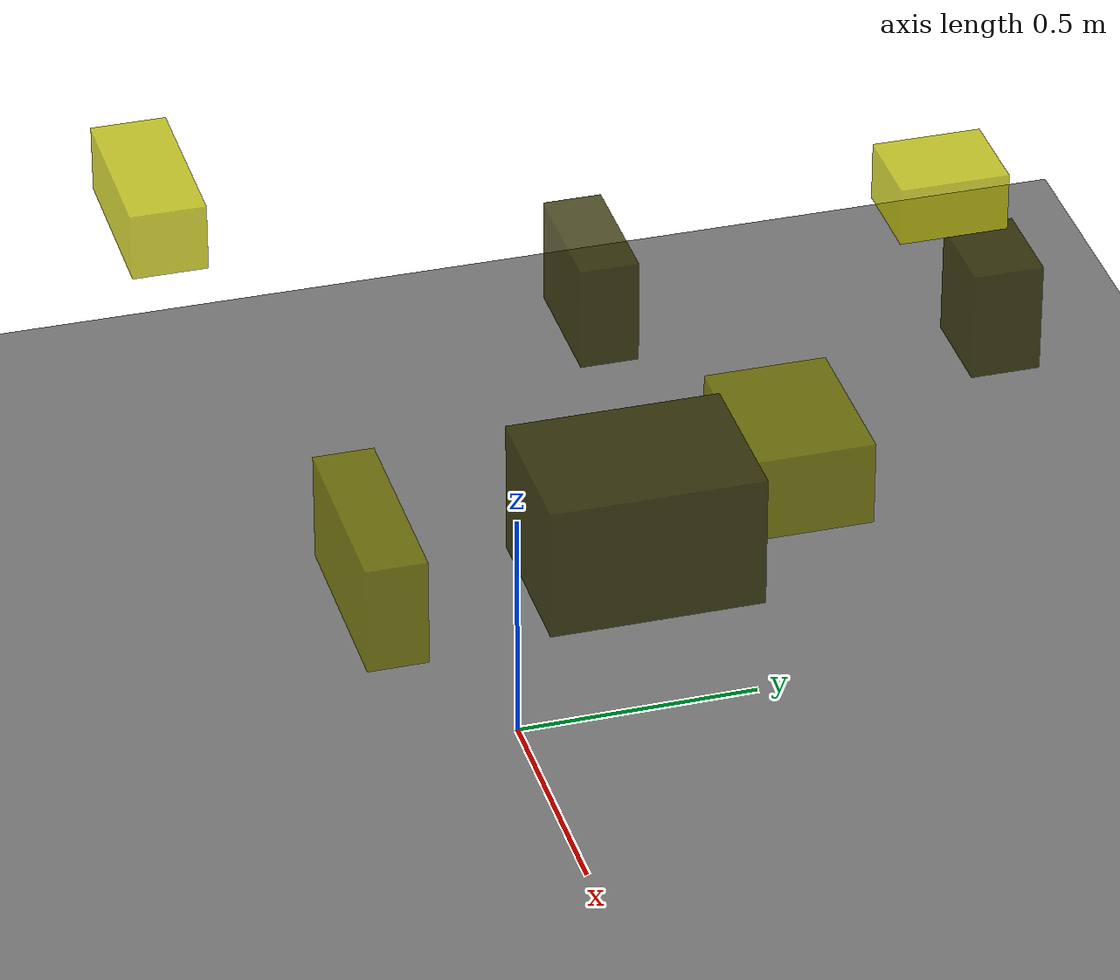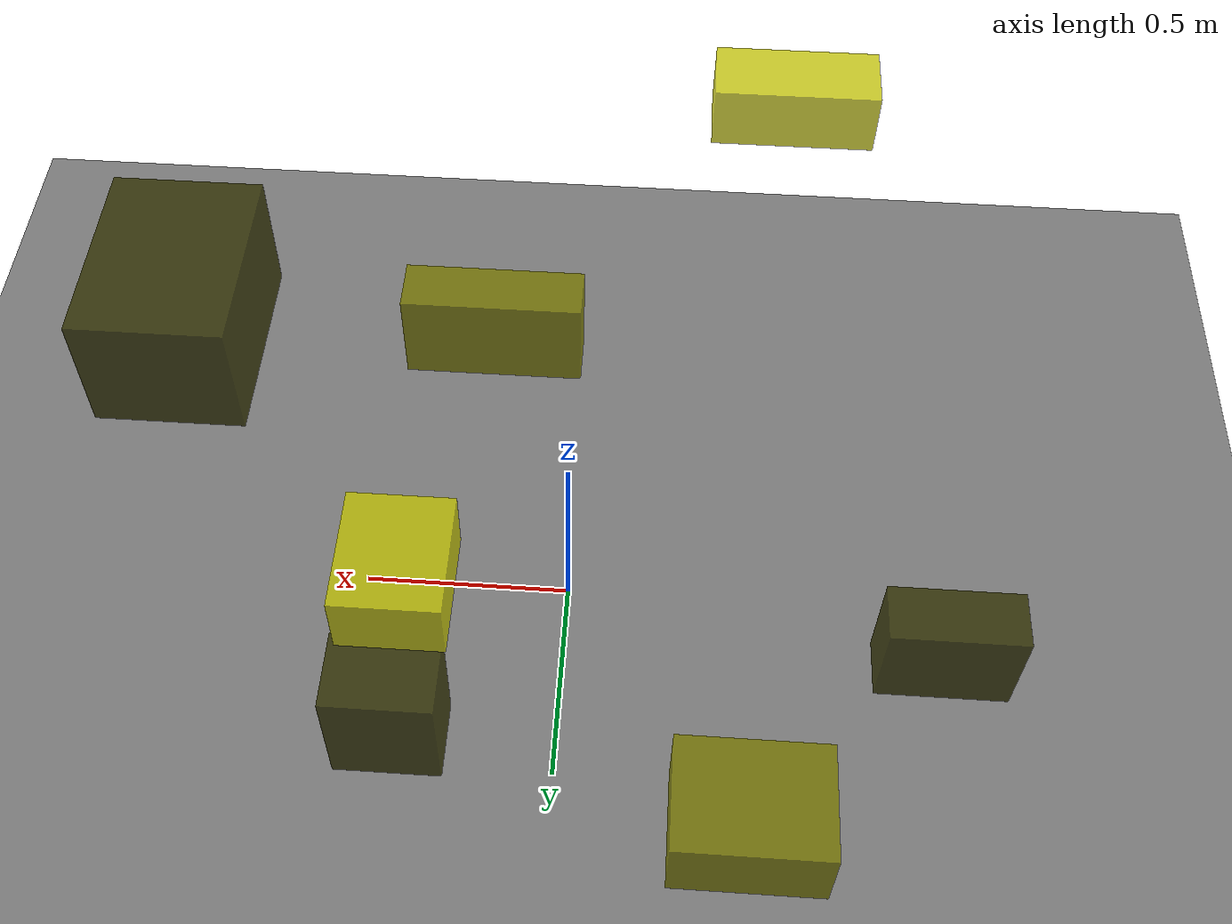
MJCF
<?xml version="1.0"?>
<mujoco model="obstacle_scene">
  <compiler angle="radian" coordinate="local"/>
  <option timestep="0.001" gravity="0 0 -9.81"/>

  <asset>
    <material name="obstacle_mat" rgba="0.8 0.8 0.0 0.8"/>
    <material name="ground_mat" rgba="0.5 0.5 0.5 1"/>
  </asset>

  <worldbody>
    <!-- Ground plane -->
    <geom name="ground" type="plane" size="3 3 0.1" material="ground_mat"/>

    <!-- Obstacles -->
    <body name="obstacle_0" pos="-0.822083 0.384669 0.497075">
      <geom name="obs_0" type="box" size="0.142166 0.061749 0.114674" rgba="0.2 0.2 0.0 0.8"/>
    </body>
    <body name="obstacle_1" pos="0.195135 -0.344430 0.604095">
      <geom name="obs_1" type="box" size="0.204495 0.060883 0.114233" rgba="0.5 0.5 0.0 0.8"/>
    </body>
    <body name="obstacle_2" pos="0.218397 0.772580 1.266606">
      <geom name="obs_2" type="box" size="0.088661 0.106187 0.058684" rgba="0.8 0.8 0.0 0.8"/>
    </body>
    <body name="obstacle_3" pos="0.778917 0.010612 1.020268">
      <geom name="obs_3" type="box" size="0.151355 0.203576 0.132864" rgba="0.2 0.2 0.0 0.8"/>
    </body>
    <body name="obstacle_4" pos="-0.432511 0.695254 0.273349">
      <geom name="obs_4" type="box" size="0.170430 0.130469 0.094244" rgba="0.5 0.5 0.0 0.8"/>
    </body>
    <body name="obstacle_5" pos="-0.449448 -0.614558 1.080098">
      <geom name="obs_5" type="box" size="0.174464 0.075002 0.069107" rgba="0.8 0.8 0.0 0.8"/>
    </body>
    <body name="obstacle_6" pos="0.241428 0.877194 1.013992">
      <geom name="obs_6" type="box" size="0.093617 0.068185 0.112179" rgba="0.2 0.2 0.0 0.8"/>
    </body>
  </worldbody>
</mujoco>
